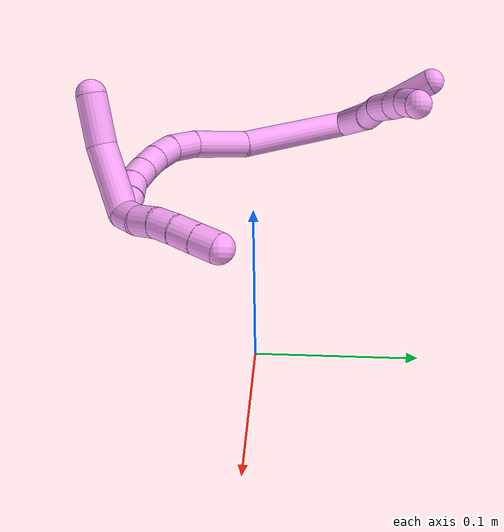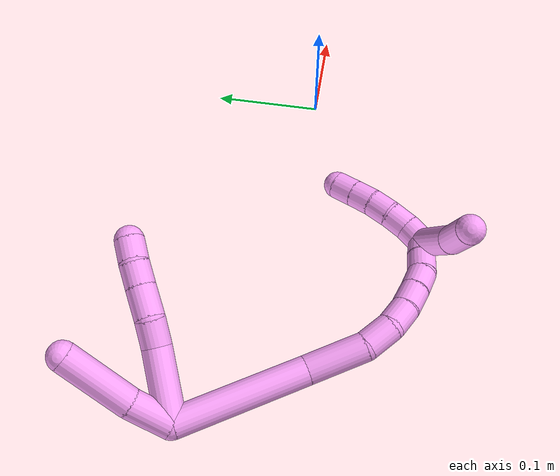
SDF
<sdf version="1.7">
 <world name="default">
  <model name="4">
   <static>0</static>
   <link name="4">
    <collision name="collision-cylinder-e_1_2_8">
     <pose>0.019178 0.023168 -0.003346 -1.71425 0.686373 -0.782724</pose>
     <geometry><cylinder><radius>0.0125</radius><length>0.060523</length></cylinder></geometry>
     <surface>
      <friction><ode><mu>1.16</mu><mu2>1.16</mu2><slip1>0</slip1><slip2>0</slip2></ode></friction>
      <contact><ode><kp>1e+06</kp><kd>1</kd><max_vel>0</max_vel><min_depth>0.001</min_depth></ode></contact>
     </surface>
    </collision>
    <visual name="visual-cylinder-e_1_2_8">
     <pose>0.019178 0.023168 -0.003346 -1.71425 0.686373 -0.782724</pose>
     <geometry><cylinder><radius>0.0125</radius><length>0.060523</length></cylinder></geometry>
     <material><ambient>1 0.65098 0.996078 1</ambient></material>
    </visual>
    <collision name="collision-cylinder-e_2_8_9">
     <pose>0.045596 0.055027 -0.005207 -1.40142 0.687538 -0.58651</pose>
     <geometry><cylinder><radius>0.0125</radius><length>0.022818</length></cylinder></geometry>
     <surface>
      <friction><ode><mu>1.16</mu><mu2>1.16</mu2><slip1>0</slip1><slip2>0</slip2></ode></friction>
      <contact><ode><kp>1e+06</kp><kd>1</kd><max_vel>0</max_vel><min_depth>0.001</min_depth></ode></contact>
     </surface>
    </collision>
    <visual name="visual-cylinder-e_2_8_9">
     <pose>0.045596 0.055027 -0.005207 -1.40142 0.687538 -0.58651</pose>
     <geometry><cylinder><radius>0.0125</radius><length>0.022818</length></cylinder></geometry>
     <material><ambient>1 0.65098 0.996078 1</ambient></material>
    </visual>
    <collision name="collision-cylinder-e_3_9_10">
     <pose>0.06016 0.074634 -0.005677 -1.74818 0.583615 -0.689376</pose>
     <geometry><cylinder><radius>0.0125</radius><length>0.026579</length></cylinder></geometry>
     <surface>
      <friction><ode><mu>1.16</mu><mu2>1.16</mu2><slip1>0</slip1><slip2>0</slip2></ode></friction>
      <contact><ode><kp>1e+06</kp><kd>1</kd><max_vel>0</max_vel><min_depth>0.001</min_depth></ode></contact>
     </surface>
    </collision>
    <visual name="visual-cylinder-e_3_9_10">
     <pose>0.06016 0.074634 -0.005677 -1.74818 0.583615 -0.689376</pose>
     <geometry><cylinder><radius>0.0125</radius><length>0.026579</length></cylinder></geometry>
     <material><ambient>1 0.65098 0.996078 1</ambient></material>
    </visual>
    <collision name="collision-cylinder-e_4_10_11">
     <pose>0.073228 0.093688 -0.008662 -1.69642 0.610939 -0.686977</pose>
     <geometry><cylinder><radius>0.0125</radius><length>0.020028</length></cylinder></geometry>
     <surface>
      <friction><ode><mu>1.16</mu><mu2>1.16</mu2><slip1>0</slip1><slip2>0</slip2></ode></friction>
      <contact><ode><kp>1e+06</kp><kd>1</kd><max_vel>0</max_vel><min_depth>0.001</min_depth></ode></contact>
     </surface>
    </collision>
    <visual name="visual-cylinder-e_4_10_11">
     <pose>0.073228 0.093688 -0.008662 -1.69642 0.610939 -0.686977</pose>
     <geometry><cylinder><radius>0.0125</radius><length>0.020028</length></cylinder></geometry>
     <material><ambient>1 0.65098 0.996078 1</ambient></material>
    </visual>
    <collision name="collision-cylinder-e_5_11_6">
     <pose>0.084492 0.109583 -0.012834 -1.95593 0.583029 -0.838074</pose>
     <geometry><cylinder><radius>0.0125</radius><length>0.020051</length></cylinder></geometry>
     <surface>
      <friction><ode><mu>1.16</mu><mu2>1.16</mu2><slip1>0</slip1><slip2>0</slip2></ode></friction>
      <contact><ode><kp>1e+06</kp><kd>1</kd><max_vel>0</max_vel><min_depth>0.001</min_depth></ode></contact>
     </surface>
    </collision>
    <visual name="visual-cylinder-e_5_11_6">
     <pose>0.084492 0.109583 -0.012834 -1.95593 0.583029 -0.838074</pose>
     <geometry><cylinder><radius>0.0125</radius><length>0.020051</length></cylinder></geometry>
     <material><ambient>1 0.65098 0.996078 1</ambient></material>
    </visual>
    <collision name="collision-cylinder-e_1_2_12">
     <pose>-0.0024 0.017454 0.005216 -1.28042 -0.131019 0.097654</pose>
     <geometry><cylinder><radius>0.0125</radius><length>0.036749</length></cylinder></geometry>
     <surface>
      <friction><ode><mu>1.16</mu><mu2>1.16</mu2><slip1>0</slip1><slip2>0</slip2></ode></friction>
      <contact><ode><kp>1e+06</kp><kd>1</kd><max_vel>0</max_vel><min_depth>0.001</min_depth></ode></contact>
     </surface>
    </collision>
    <visual name="visual-cylinder-e_1_2_12">
     <pose>-0.0024 0.017454 0.005216 -1.28042 -0.131019 0.097654</pose>
     <geometry><cylinder><radius>0.0125</radius><length>0.036749</length></cylinder></geometry>
     <material><ambient>1 0.65098 0.996078 1</ambient></material>
    </visual>
    <collision name="collision-cylinder-e_2_12_5">
     <pose>-0.004067 0.064683 0.021066 -1.22776 0.023217 -0.016362</pose>
     <geometry><cylinder><radius>0.0125</radius><length>0.063251</length></cylinder></geometry>
     <surface>
      <friction><ode><mu>1.16</mu><mu2>1.16</mu2><slip1>0</slip1><slip2>0</slip2></ode></friction>
      <contact><ode><kp>1e+06</kp><kd>1</kd><max_vel>0</max_vel><min_depth>0.001</min_depth></ode></contact>
     </surface>
    </collision>
    <visual name="visual-cylinder-e_2_12_5">
     <pose>-0.004067 0.064683 0.021066 -1.22776 0.023217 -0.016362</pose>
     <geometry><cylinder><radius>0.0125</radius><length>0.063251</length></cylinder></geometry>
     <material><ambient>1 0.65098 0.996078 1</ambient></material>
    </visual>
    <collision name="collision-cylinder-e_1_2_13">
     <pose>0.046545 -0.029452 -0.016669 2.0858 0.942121 1.4359</pose>
     <geometry><cylinder><radius>0.0125</radius><length>0.115095</length></cylinder></geometry>
     <surface>
      <friction><ode><mu>1.16</mu><mu2>1.16</mu2><slip1>0</slip1><slip2>0</slip2></ode></friction>
      <contact><ode><kp>1e+06</kp><kd>1</kd><max_vel>0</max_vel><min_depth>0.001</min_depth></ode></contact>
     </surface>
    </collision>
    <visual name="visual-cylinder-e_1_2_13">
     <pose>0.046545 -0.029452 -0.016669 2.0858 0.942121 1.4359</pose>
     <geometry><cylinder><radius>0.0125</radius><length>0.115095</length></cylinder></geometry>
     <material><ambient>1 0.65098 0.996078 1</ambient></material>
    </visual>
    <collision name="collision-cylinder-e_2_13_14">
     <pose>0.115078 -0.072075 -0.03601 1.77105 1.0222 1.20262</pose>
     <geometry><cylinder><radius>0.0125</radius><length>0.051541</length></cylinder></geometry>
     <surface>
      <friction><ode><mu>1.16</mu><mu2>1.16</mu2><slip1>0</slip1><slip2>0</slip2></ode></friction>
      <contact><ode><kp>1e+06</kp><kd>1</kd><max_vel>0</max_vel><min_depth>0.001</min_depth></ode></contact>
     </surface>
    </collision>
    <visual name="visual-cylinder-e_2_13_14">
     <pose>0.115078 -0.072075 -0.03601 1.77105 1.0222 1.20262</pose>
     <geometry><cylinder><radius>0.0125</radius><length>0.051541</length></cylinder></geometry>
     <material><ambient>1 0.65098 0.996078 1</ambient></material>
    </visual>
    <collision name="collision-cylinder-e_3_14_15">
     <pose>0.149433 -0.08879 -0.042761 2.42607 1.15895 2.10354</pose>
     <geometry><cylinder><radius>0.0125</radius><length>0.02699</length></cylinder></geometry>
     <surface>
      <friction><ode><mu>1.16</mu><mu2>1.16</mu2><slip1>0</slip1><slip2>0</slip2></ode></friction>
      <contact><ode><kp>1e+06</kp><kd>1</kd><max_vel>0</max_vel><min_depth>0.001</min_depth></ode></contact>
     </surface>
    </collision>
    <visual name="visual-cylinder-e_3_14_15">
     <pose>0.149433 -0.08879 -0.042761 2.42607 1.15895 2.10354</pose>
     <geometry><cylinder><radius>0.0125</radius><length>0.02699</length></cylinder></geometry>
     <material><ambient>1 0.65098 0.996078 1</ambient></material>
    </visual>
    <collision name="collision-cylinder-e_4_15_16">
     <pose>0.171473 -0.093071 -0.053089 3.02409 0.993957 2.92555</pose>
     <geometry><cylinder><radius>0.0125</radius><length>0.023081</length></cylinder></geometry>
     <surface>
      <friction><ode><mu>1.16</mu><mu2>1.16</mu2><slip1>0</slip1><slip2>0</slip2></ode></friction>
      <contact><ode><kp>1e+06</kp><kd>1</kd><max_vel>0</max_vel><min_depth>0.001</min_depth></ode></contact>
     </surface>
    </collision>
    <visual name="visual-cylinder-e_4_15_16">
     <pose>0.171473 -0.093071 -0.053089 3.02409 0.993957 2.92555</pose>
     <geometry><cylinder><radius>0.0125</radius><length>0.023081</length></cylinder></geometry>
     <material><ambient>1 0.65098 0.996078 1</ambient></material>
    </visual>
    <collision name="collision-cylinder-e_5_16_17">
     <pose>0.189895 -0.092916 -0.066077 -3.0098 0.910281 -2.87353</pose>
     <geometry><cylinder><radius>0.0125</radius><length>0.022157</length></cylinder></geometry>
     <surface>
      <friction><ode><mu>1.16</mu><mu2>1.16</mu2><slip1>0</slip1><slip2>0</slip2></ode></friction>
      <contact><ode><kp>1e+06</kp><kd>1</kd><max_vel>0</max_vel><min_depth>0.001</min_depth></ode></contact>
     </surface>
    </collision>
    <visual name="visual-cylinder-e_5_16_17">
     <pose>0.189895 -0.092916 -0.066077 -3.0098 0.910281 -2.87353</pose>
     <geometry><cylinder><radius>0.0125</radius><length>0.022157</length></cylinder></geometry>
     <material><ambient>1 0.65098 0.996078 1</ambient></material>
    </visual>
    <collision name="collision-cylinder-e_6_17_18">
     <pose>0.20638 -0.090727 -0.079362 -2.94615 0.859006 -2.71987</pose>
     <geometry><cylinder><radius>0.0125</radius><length>0.020434</length></cylinder></geometry>
     <surface>
      <friction><ode><mu>1.16</mu><mu2>1.16</mu2><slip1>0</slip1><slip2>0</slip2></ode></friction>
      <contact><ode><kp>1e+06</kp><kd>1</kd><max_vel>0</max_vel><min_depth>0.001</min_depth></ode></contact>
     </surface>
    </collision>
    <visual name="visual-cylinder-e_6_17_18">
     <pose>0.20638 -0.090727 -0.079362 -2.94615 0.859006 -2.71987</pose>
     <geometry><cylinder><radius>0.0125</radius><length>0.020434</length></cylinder></geometry>
     <material><ambient>1 0.65098 0.996078 1</ambient></material>
    </visual>
    <collision name="collision-cylinder-e_7_18_19">
     <pose>0.219971 -0.085548 -0.093172 -2.65074 0.617983 -1.81095</pose>
     <geometry><cylinder><radius>0.0125</radius><length>0.020209</length></cylinder></geometry>
     <surface>
      <friction><ode><mu>1.16</mu><mu2>1.16</mu2><slip1>0</slip1><slip2>0</slip2></ode></friction>
      <contact><ode><kp>1e+06</kp><kd>1</kd><max_vel>0</max_vel><min_depth>0.001</min_depth></ode></contact>
     </surface>
    </collision>
    <visual name="visual-cylinder-e_7_18_19">
     <pose>0.219971 -0.085548 -0.093172 -2.65074 0.617983 -1.81095</pose>
     <geometry><cylinder><radius>0.0125</radius><length>0.020209</length></cylinder></geometry>
     <material><ambient>1 0.65098 0.996078 1</ambient></material>
    </visual>
    <collision name="collision-cylinder-e_8_19_1">
     <pose>0.231928 -0.078572 -0.108062 -2.75615 0.638019 -2.07429</pose>
     <geometry><cylinder><radius>0.0125</radius><length>0.020493</length></cylinder></geometry>
     <surface>
      <friction><ode><mu>1.16</mu><mu2>1.16</mu2><slip1>0</slip1><slip2>0</slip2></ode></friction>
      <contact><ode><kp>1e+06</kp><kd>1</kd><max_vel>0</max_vel><min_depth>0.001</min_depth></ode></contact>
     </surface>
    </collision>
    <visual name="visual-cylinder-e_8_19_1">
     <pose>0.231928 -0.078572 -0.108062 -2.75615 0.638019 -2.07429</pose>
     <geometry><cylinder><radius>0.0125</radius><length>0.020493</length></cylinder></geometry>
     <material><ambient>1 0.65098 0.996078 1</ambient></material>
    </visual>
    <collision name="collision-cylinder-e_1_1_20">
     <pose>0.244286 -0.083034 -0.088552 0.2716 0.218512 0.029975</pose>
     <geometry><cylinder><radius>0.0125</radius><length>0.057711</length></cylinder></geometry>
     <surface>
      <friction><ode><mu>1.16</mu><mu2>1.16</mu2><slip1>0</slip1><slip2>0</slip2></ode></friction>
      <contact><ode><kp>1e+06</kp><kd>1</kd><max_vel>0</max_vel><min_depth>0.001</min_depth></ode></contact>
     </surface>
    </collision>
    <visual name="visual-cylinder-e_1_1_20">
     <pose>0.244286 -0.083034 -0.088552 0.2716 0.218512 0.029975</pose>
     <geometry><cylinder><radius>0.0125</radius><length>0.057711</length></cylinder></geometry>
     <material><ambient>1 0.65098 0.996078 1</ambient></material>
    </visual>
    <collision name="collision-cylinder-e_2_20_4">
     <pose>0.256 -0.092245 -0.041055 0.081043 0.261118 0.010647</pose>
     <geometry><cylinder><radius>0.0125</radius><length>0.042289</length></cylinder></geometry>
     <surface>
      <friction><ode><mu>1.16</mu><mu2>1.16</mu2><slip1>0</slip1><slip2>0</slip2></ode></friction>
      <contact><ode><kp>1e+06</kp><kd>1</kd><max_vel>0</max_vel><min_depth>0.001</min_depth></ode></contact>
     </surface>
    </collision>
    <visual name="visual-cylinder-e_2_20_4">
     <pose>0.256 -0.092245 -0.041055 0.081043 0.261118 0.010647</pose>
     <geometry><cylinder><radius>0.0125</radius><length>0.042289</length></cylinder></geometry>
     <material><ambient>1 0.65098 0.996078 1</ambient></material>
    </visual>
    <collision name="collision-cylinder-e_1_1_21">
     <pose>0.239674 -0.066267 -0.119222 -1.93708 0.165094 -0.239548</pose>
     <geometry><cylinder><radius>0.0125</radius><length>0.02</length></cylinder></geometry>
     <surface>
      <friction><ode><mu>1.16</mu><mu2>1.16</mu2><slip1>0</slip1><slip2>0</slip2></ode></friction>
      <contact><ode><kp>1e+06</kp><kd>1</kd><max_vel>0</max_vel><min_depth>0.001</min_depth></ode></contact>
     </surface>
    </collision>
    <visual name="visual-cylinder-e_1_1_21">
     <pose>0.239674 -0.066267 -0.119222 -1.93708 0.165094 -0.239548</pose>
     <geometry><cylinder><radius>0.0125</radius><length>0.02</length></cylinder></geometry>
     <material><ambient>1 0.65098 0.996078 1</ambient></material>
    </visual>
    <collision name="collision-cylinder-e_2_21_22">
     <pose>0.241565 -0.047167 -0.124204 -1.71632 0.024734 -0.028623</pose>
     <geometry><cylinder><radius>0.0125</radius><length>0.02</length></cylinder></geometry>
     <surface>
      <friction><ode><mu>1.16</mu><mu2>1.16</mu2><slip1>0</slip1><slip2>0</slip2></ode></friction>
      <contact><ode><kp>1e+06</kp><kd>1</kd><max_vel>0</max_vel><min_depth>0.001</min_depth></ode></contact>
     </surface>
    </collision>
    <visual name="visual-cylinder-e_2_21_22">
     <pose>0.241565 -0.047167 -0.124204 -1.71632 0.024734 -0.028623</pose>
     <geometry><cylinder><radius>0.0125</radius><length>0.02</length></cylinder></geometry>
     <material><ambient>1 0.65098 0.996078 1</ambient></material>
    </visual>
    <collision name="collision-cylinder-e_3_22_23">
     <pose>0.241471 -0.027798 -0.128828 -1.89396 -0.034117 0.047401</pose>
     <geometry><cylinder><radius>0.0125</radius><length>0.02</length></cylinder></geometry>
     <surface>
      <friction><ode><mu>1.16</mu><mu2>1.16</mu2><slip1>0</slip1><slip2>0</slip2></ode></friction>
      <contact><ode><kp>1e+06</kp><kd>1</kd><max_vel>0</max_vel><min_depth>0.001</min_depth></ode></contact>
     </surface>
    </collision>
    <visual name="visual-cylinder-e_3_22_23">
     <pose>0.241471 -0.027798 -0.128828 -1.89396 -0.034117 0.047401</pose>
     <geometry><cylinder><radius>0.0125</radius><length>0.02</length></cylinder></geometry>
     <material><ambient>1 0.65098 0.996078 1</ambient></material>
    </visual>
    <collision name="collision-cylinder-e_4_23_24">
     <pose>0.239886 -0.009122 -0.13572 -1.95495 -0.124758 0.184712</pose>
     <geometry><cylinder><radius>0.0125</radius><length>0.02</length></cylinder></geometry>
     <surface>
      <friction><ode><mu>1.16</mu><mu2>1.16</mu2><slip1>0</slip1><slip2>0</slip2></ode></friction>
      <contact><ode><kp>1e+06</kp><kd>1</kd><max_vel>0</max_vel><min_depth>0.001</min_depth></ode></contact>
     </surface>
    </collision>
    <visual name="visual-cylinder-e_4_23_24">
     <pose>0.239886 -0.009122 -0.13572 -1.95495 -0.124758 0.184712</pose>
     <geometry><cylinder><radius>0.0125</radius><length>0.02</length></cylinder></geometry>
     <material><ambient>1 0.65098 0.996078 1</ambient></material>
    </visual>
    <collision name="collision-cylinder-e_5_24_3">
     <pose>0.237179 0.009281 -0.143063 -1.94594 -0.146817 0.21516</pose>
     <geometry><cylinder><radius>0.0125</radius><length>0.02</length></cylinder></geometry>
     <surface>
      <friction><ode><mu>1.16</mu><mu2>1.16</mu2><slip1>0</slip1><slip2>0</slip2></ode></friction>
      <contact><ode><kp>1e+06</kp><kd>1</kd><max_vel>0</max_vel><min_depth>0.001</min_depth></ode></contact>
     </surface>
    </collision>
    <visual name="visual-cylinder-e_5_24_3">
     <pose>0.237179 0.009281 -0.143063 -1.94594 -0.146817 0.21516</pose>
     <geometry><cylinder><radius>0.0125</radius><length>0.02</length></cylinder></geometry>
     <material><ambient>1 0.65098 0.996078 1</ambient></material>
    </visual>
    <collision name="collision-sphere-3">
     <pose>0.235716 0.018486 -0.146688 0 -0 0</pose>
     <geometry><sphere><radius>0.0125</radius></sphere></geometry>
     <surface>
      <friction><ode><mu>1.16</mu><mu2>1.16</mu2><slip1>0</slip1><slip2>0</slip2></ode></friction>
      <contact><ode><kp>1e+06</kp><kd>1</kd><max_vel>0</max_vel><min_depth>0.001</min_depth></ode></contact>
     </surface>
    </collision>
    <visual name="visual-sphere-3">
     <pose>0.235716 0.018486 -0.146688 0 -0 0</pose>
     <geometry><sphere><radius>0.0125</radius></sphere></geometry>
     <material><ambient>1 0.65098 0.996078 1</ambient></material>
    </visual>
    <collision name="collision-sphere-24">
     <pose>0.238641 7.7e-05 -0.139439 0 -0 0</pose>
     <geometry><sphere><radius>0.0125</radius></sphere></geometry>
     <surface>
      <friction><ode><mu>1.16</mu><mu2>1.16</mu2><slip1>0</slip1><slip2>0</slip2></ode></friction>
      <contact><ode><kp>1e+06</kp><kd>1</kd><max_vel>0</max_vel><min_depth>0.001</min_depth></ode></contact>
     </surface>
    </collision>
    <visual name="visual-sphere-24">
     <pose>0.238641 7.7e-05 -0.139439 0 -0 0</pose>
     <geometry><sphere><radius>0.0125</radius></sphere></geometry>
     <material><ambient>1 0.65098 0.996078 1</ambient></material>
    </visual>
    <collision name="collision-sphere-23">
     <pose>0.24113 -0.018322 -0.132002 0 -0 0</pose>
     <geometry><sphere><radius>0.0125</radius></sphere></geometry>
     <surface>
      <friction><ode><mu>1.16</mu><mu2>1.16</mu2><slip1>0</slip1><slip2>0</slip2></ode></friction>
      <contact><ode><kp>1e+06</kp><kd>1</kd><max_vel>0</max_vel><min_depth>0.001</min_depth></ode></contact>
     </surface>
    </collision>
    <visual name="visual-sphere-23">
     <pose>0.24113 -0.018322 -0.132002 0 -0 0</pose>
     <geometry><sphere><radius>0.0125</radius></sphere></geometry>
     <material><ambient>1 0.65098 0.996078 1</ambient></material>
    </visual>
    <collision name="collision-sphere-22">
     <pose>0.241812 -0.037275 -0.125654 0 -0 0</pose>
     <geometry><sphere><radius>0.0125</radius></sphere></geometry>
     <surface>
      <friction><ode><mu>1.16</mu><mu2>1.16</mu2><slip1>0</slip1><slip2>0</slip2></ode></friction>
      <contact><ode><kp>1e+06</kp><kd>1</kd><max_vel>0</max_vel><min_depth>0.001</min_depth></ode></contact>
     </surface>
    </collision>
    <visual name="visual-sphere-22">
     <pose>0.241812 -0.037275 -0.125654 0 -0 0</pose>
     <geometry><sphere><radius>0.0125</radius></sphere></geometry>
     <material><ambient>1 0.65098 0.996078 1</ambient></material>
    </visual>
    <collision name="collision-sphere-21">
     <pose>0.241318 -0.057058 -0.122755 0 -0 0</pose>
     <geometry><sphere><radius>0.0125</radius></sphere></geometry>
     <surface>
      <friction><ode><mu>1.16</mu><mu2>1.16</mu2><slip1>0</slip1><slip2>0</slip2></ode></friction>
      <contact><ode><kp>1e+06</kp><kd>1</kd><max_vel>0</max_vel><min_depth>0.001</min_depth></ode></contact>
     </surface>
    </collision>
    <visual name="visual-sphere-21">
     <pose>0.241318 -0.057058 -0.122755 0 -0 0</pose>
     <geometry><sphere><radius>0.0125</radius></sphere></geometry>
     <material><ambient>1 0.65098 0.996078 1</ambient></material>
    </visual>
    <collision name="collision-sphere-4">
     <pose>0.261459 -0.093899 -0.020694 0 -0 0</pose>
     <geometry><sphere><radius>0.0125</radius></sphere></geometry>
     <surface>
      <friction><ode><mu>1.16</mu><mu2>1.16</mu2><slip1>0</slip1><slip2>0</slip2></ode></friction>
      <contact><ode><kp>1e+06</kp><kd>1</kd><max_vel>0</max_vel><min_depth>0.001</min_depth></ode></contact>
     </surface>
    </collision>
    <visual name="visual-sphere-4">
     <pose>0.261459 -0.093899 -0.020694 0 -0 0</pose>
     <geometry><sphere><radius>0.0125</radius></sphere></geometry>
     <material><ambient>1 0.65098 0.996078 1</ambient></material>
    </visual>
    <collision name="collision-sphere-20">
     <pose>0.250541 -0.090591 -0.061416 0 -0 0</pose>
     <geometry><sphere><radius>0.0125</radius></sphere></geometry>
     <surface>
      <friction><ode><mu>1.16</mu><mu2>1.16</mu2><slip1>0</slip1><slip2>0</slip2></ode></friction>
      <contact><ode><kp>1e+06</kp><kd>1</kd><max_vel>0</max_vel><min_depth>0.001</min_depth></ode></contact>
     </surface>
    </collision>
    <visual name="visual-sphere-20">
     <pose>0.250541 -0.090591 -0.061416 0 -0 0</pose>
     <geometry><sphere><radius>0.0125</radius></sphere></geometry>
     <material><ambient>1 0.65098 0.996078 1</ambient></material>
    </visual>
    <collision name="collision-sphere-6">
     <pose>0.090011 0.117339 -0.015978 0 -0 0</pose>
     <geometry><sphere><radius>0.0125</radius></sphere></geometry>
     <surface>
      <friction><ode><mu>1.16</mu><mu2>1.16</mu2><slip1>0</slip1><slip2>0</slip2></ode></friction>
      <contact><ode><kp>1e+06</kp><kd>1</kd><max_vel>0</max_vel><min_depth>0.001</min_depth></ode></contact>
     </surface>
    </collision>
    <visual name="visual-sphere-6">
     <pose>0.090011 0.117339 -0.015978 0 -0 0</pose>
     <geometry><sphere><radius>0.0125</radius></sphere></geometry>
     <material><ambient>1 0.65098 0.996078 1</ambient></material>
    </visual>
    <collision name="collision-sphere-11">
     <pose>0.078972 0.101826 -0.00969 0 -0 0</pose>
     <geometry><sphere><radius>0.0125</radius></sphere></geometry>
     <surface>
      <friction><ode><mu>1.16</mu><mu2>1.16</mu2><slip1>0</slip1><slip2>0</slip2></ode></friction>
      <contact><ode><kp>1e+06</kp><kd>1</kd><max_vel>0</max_vel><min_depth>0.001</min_depth></ode></contact>
     </surface>
    </collision>
    <visual name="visual-sphere-11">
     <pose>0.078972 0.101826 -0.00969 0 -0 0</pose>
     <geometry><sphere><radius>0.0125</radius></sphere></geometry>
     <material><ambient>1 0.65098 0.996078 1</ambient></material>
    </visual>
    <collision name="collision-sphere-10">
     <pose>0.067483 0.08555 -0.007634 0 -0 0</pose>
     <geometry><sphere><radius>0.0125</radius></sphere></geometry>
     <surface>
      <friction><ode><mu>1.16</mu><mu2>1.16</mu2><slip1>0</slip1><slip2>0</slip2></ode></friction>
      <contact><ode><kp>1e+06</kp><kd>1</kd><max_vel>0</max_vel><min_depth>0.001</min_depth></ode></contact>
     </surface>
    </collision>
    <visual name="visual-sphere-10">
     <pose>0.067483 0.08555 -0.007634 0 -0 0</pose>
     <geometry><sphere><radius>0.0125</radius></sphere></geometry>
     <material><ambient>1 0.65098 0.996078 1</ambient></material>
    </visual>
    <collision name="collision-sphere-9">
     <pose>0.052837 0.063718 -0.00372 0 -0 0</pose>
     <geometry><sphere><radius>0.0125</radius></sphere></geometry>
     <surface>
      <friction><ode><mu>1.16</mu><mu2>1.16</mu2><slip1>0</slip1><slip2>0</slip2></ode></friction>
      <contact><ode><kp>1e+06</kp><kd>1</kd><max_vel>0</max_vel><min_depth>0.001</min_depth></ode></contact>
     </surface>
    </collision>
    <visual name="visual-sphere-9">
     <pose>0.052837 0.063718 -0.00372 0 -0 0</pose>
     <geometry><sphere><radius>0.0125</radius></sphere></geometry>
     <material><ambient>1 0.65098 0.996078 1</ambient></material>
    </visual>
    <collision name="collision-sphere-2">
     <geometry><sphere><radius>0.0125</radius></sphere></geometry>
     <surface>
      <friction><ode><mu>1.16</mu><mu2>1.16</mu2><slip1>0</slip1><slip2>0</slip2></ode></friction>
      <contact><ode><kp>1e+06</kp><kd>1</kd><max_vel>0</max_vel><min_depth>0.001</min_depth></ode></contact>
     </surface>
    </collision>
    <visual name="visual-sphere-2">
     <geometry><sphere><radius>0.0125</radius></sphere></geometry>
     <material><ambient>1 0.65098 0.996078 1</ambient></material>
    </visual>
    <collision name="collision-sphere-19">
     <pose>0.225825 -0.081666 -0.100435 0 -0 0</pose>
     <geometry><sphere><radius>0.0125</radius></sphere></geometry>
     <surface>
      <friction><ode><mu>1.16</mu><mu2>1.16</mu2><slip1>0</slip1><slip2>0</slip2></ode></friction>
      <contact><ode><kp>1e+06</kp><kd>1</kd><max_vel>0</max_vel><min_depth>0.001</min_depth></ode></contact>
     </surface>
    </collision>
    <visual name="visual-sphere-19">
     <pose>0.225825 -0.081666 -0.100435 0 -0 0</pose>
     <geometry><sphere><radius>0.0125</radius></sphere></geometry>
     <material><ambient>1 0.65098 0.996078 1</ambient></material>
    </visual>
    <collision name="collision-sphere-8">
     <pose>0.038355 0.046336 -0.006693 0 -0 0</pose>
     <geometry><sphere><radius>0.0125</radius></sphere></geometry>
     <surface>
      <friction><ode><mu>1.16</mu><mu2>1.16</mu2><slip1>0</slip1><slip2>0</slip2></ode></friction>
      <contact><ode><kp>1e+06</kp><kd>1</kd><max_vel>0</max_vel><min_depth>0.001</min_depth></ode></contact>
     </surface>
    </collision>
    <visual name="visual-sphere-8">
     <pose>0.038355 0.046336 -0.006693 0 -0 0</pose>
     <geometry><sphere><radius>0.0125</radius></sphere></geometry>
     <material><ambient>1 0.65098 0.996078 1</ambient></material>
    </visual>
    <collision name="collision-sphere-12">
     <pose>-0.004801 0.034908 0.010431 0 -0 0</pose>
     <geometry><sphere><radius>0.0125</radius></sphere></geometry>
     <surface>
      <friction><ode><mu>1.16</mu><mu2>1.16</mu2><slip1>0</slip1><slip2>0</slip2></ode></friction>
      <contact><ode><kp>1e+06</kp><kd>1</kd><max_vel>0</max_vel><min_depth>0.001</min_depth></ode></contact>
     </surface>
    </collision>
    <visual name="visual-sphere-12">
     <pose>-0.004801 0.034908 0.010431 0 -0 0</pose>
     <geometry><sphere><radius>0.0125</radius></sphere></geometry>
     <material><ambient>1 0.65098 0.996078 1</ambient></material>
    </visual>
    <collision name="collision-sphere-5">
     <pose>-0.003333 0.094459 0.0317 0 -0 0</pose>
     <geometry><sphere><radius>0.0125</radius></sphere></geometry>
     <surface>
      <friction><ode><mu>1.16</mu><mu2>1.16</mu2><slip1>0</slip1><slip2>0</slip2></ode></friction>
      <contact><ode><kp>1e+06</kp><kd>1</kd><max_vel>0</max_vel><min_depth>0.001</min_depth></ode></contact>
     </surface>
    </collision>
    <visual name="visual-sphere-5">
     <pose>-0.003333 0.094459 0.0317 0 -0 0</pose>
     <geometry><sphere><radius>0.0125</radius></sphere></geometry>
     <material><ambient>1 0.65098 0.996078 1</ambient></material>
    </visual>
    <collision name="collision-sphere-13">
     <pose>0.093089 -0.058905 -0.033337 0 -0 0</pose>
     <geometry><sphere><radius>0.0125</radius></sphere></geometry>
     <surface>
      <friction><ode><mu>1.16</mu><mu2>1.16</mu2><slip1>0</slip1><slip2>0</slip2></ode></friction>
      <contact><ode><kp>1e+06</kp><kd>1</kd><max_vel>0</max_vel><min_depth>0.001</min_depth></ode></contact>
     </surface>
    </collision>
    <visual name="visual-sphere-13">
     <pose>0.093089 -0.058905 -0.033337 0 -0 0</pose>
     <geometry><sphere><radius>0.0125</radius></sphere></geometry>
     <material><ambient>1 0.65098 0.996078 1</ambient></material>
    </visual>
    <collision name="collision-sphere-14">
     <pose>0.137067 -0.085246 -0.038684 0 -0 0</pose>
     <geometry><sphere><radius>0.0125</radius></sphere></geometry>
     <surface>
      <friction><ode><mu>1.16</mu><mu2>1.16</mu2><slip1>0</slip1><slip2>0</slip2></ode></friction>
      <contact><ode><kp>1e+06</kp><kd>1</kd><max_vel>0</max_vel><min_depth>0.001</min_depth></ode></contact>
     </surface>
    </collision>
    <visual name="visual-sphere-14">
     <pose>0.137067 -0.085246 -0.038684 0 -0 0</pose>
     <geometry><sphere><radius>0.0125</radius></sphere></geometry>
     <material><ambient>1 0.65098 0.996078 1</ambient></material>
    </visual>
    <collision name="collision-sphere-15">
     <pose>0.1618 -0.092333 -0.046838 0 -0 0</pose>
     <geometry><sphere><radius>0.0125</radius></sphere></geometry>
     <surface>
      <friction><ode><mu>1.16</mu><mu2>1.16</mu2><slip1>0</slip1><slip2>0</slip2></ode></friction>
      <contact><ode><kp>1e+06</kp><kd>1</kd><max_vel>0</max_vel><min_depth>0.001</min_depth></ode></contact>
     </surface>
    </collision>
    <visual name="visual-sphere-15">
     <pose>0.1618 -0.092333 -0.046838 0 -0 0</pose>
     <geometry><sphere><radius>0.0125</radius></sphere></geometry>
     <material><ambient>1 0.65098 0.996078 1</ambient></material>
    </visual>
    <collision name="collision-sphere-16">
     <pose>0.181146 -0.093809 -0.059339 0 -0 0</pose>
     <geometry><sphere><radius>0.0125</radius></sphere></geometry>
     <surface>
      <friction><ode><mu>1.16</mu><mu2>1.16</mu2><slip1>0</slip1><slip2>0</slip2></ode></friction>
      <contact><ode><kp>1e+06</kp><kd>1</kd><max_vel>0</max_vel><min_depth>0.001</min_depth></ode></contact>
     </surface>
    </collision>
    <visual name="visual-sphere-16">
     <pose>0.181146 -0.093809 -0.059339 0 -0 0</pose>
     <geometry><sphere><radius>0.0125</radius></sphere></geometry>
     <material><ambient>1 0.65098 0.996078 1</ambient></material>
    </visual>
    <collision name="collision-sphere-17">
     <pose>0.198643 -0.092023 -0.072815 0 -0 0</pose>
     <geometry><sphere><radius>0.0125</radius></sphere></geometry>
     <surface>
      <friction><ode><mu>1.16</mu><mu2>1.16</mu2><slip1>0</slip1><slip2>0</slip2></ode></friction>
      <contact><ode><kp>1e+06</kp><kd>1</kd><max_vel>0</max_vel><min_depth>0.001</min_depth></ode></contact>
     </surface>
    </collision>
    <visual name="visual-sphere-17">
     <pose>0.198643 -0.092023 -0.072815 0 -0 0</pose>
     <geometry><sphere><radius>0.0125</radius></sphere></geometry>
     <material><ambient>1 0.65098 0.996078 1</ambient></material>
    </visual>
    <collision name="collision-sphere-18">
     <pose>0.214116 -0.089431 -0.085909 0 -0 0</pose>
     <geometry><sphere><radius>0.0125</radius></sphere></geometry>
     <surface>
      <friction><ode><mu>1.16</mu><mu2>1.16</mu2><slip1>0</slip1><slip2>0</slip2></ode></friction>
      <contact><ode><kp>1e+06</kp><kd>1</kd><max_vel>0</max_vel><min_depth>0.001</min_depth></ode></contact>
     </surface>
    </collision>
    <visual name="visual-sphere-18">
     <pose>0.214116 -0.089431 -0.085909 0 -0 0</pose>
     <geometry><sphere><radius>0.0125</radius></sphere></geometry>
     <material><ambient>1 0.65098 0.996078 1</ambient></material>
    </visual>
    <collision name="collision-sphere-1">
     <pose>0.238031 -0.075477 -0.115689 0 -0 0</pose>
     <geometry><sphere><radius>0.0125</radius></sphere></geometry>
     <surface>
      <friction><ode><mu>1.16</mu><mu2>1.16</mu2><slip1>0</slip1><slip2>0</slip2></ode></friction>
      <contact><ode><kp>1e+06</kp><kd>1</kd><max_vel>0</max_vel><min_depth>0.001</min_depth></ode></contact>
     </surface>
    </collision>
    <visual name="visual-sphere-1">
     <pose>0.238031 -0.075477 -0.115689 0 -0 0</pose>
     <geometry><sphere><radius>0.0125</radius></sphere></geometry>
     <material><ambient>1 0.65098 0.996078 1</ambient></material>
    </visual>
    <inertial>
     <pose>0.12325 -0.022623 -0.043445 0 -0 0</pose>
     <mass>0.75</mass>
     <inertia>
      <ixx>0.00018</ixx>
      <ixy>0</ixy>
      <ixz>0</ixz>
      <iyy>0.000228</iyy>
      <iyz>0</iyz>
      <izz>-0.000129</izz>
     </inertia>
    </inertial>
   </link>
   <pose>-0.367633 0.064753 0.014118 0.337351 -0.506162 -0.604639</pose>
  </model>
 </world>
</sdf>
